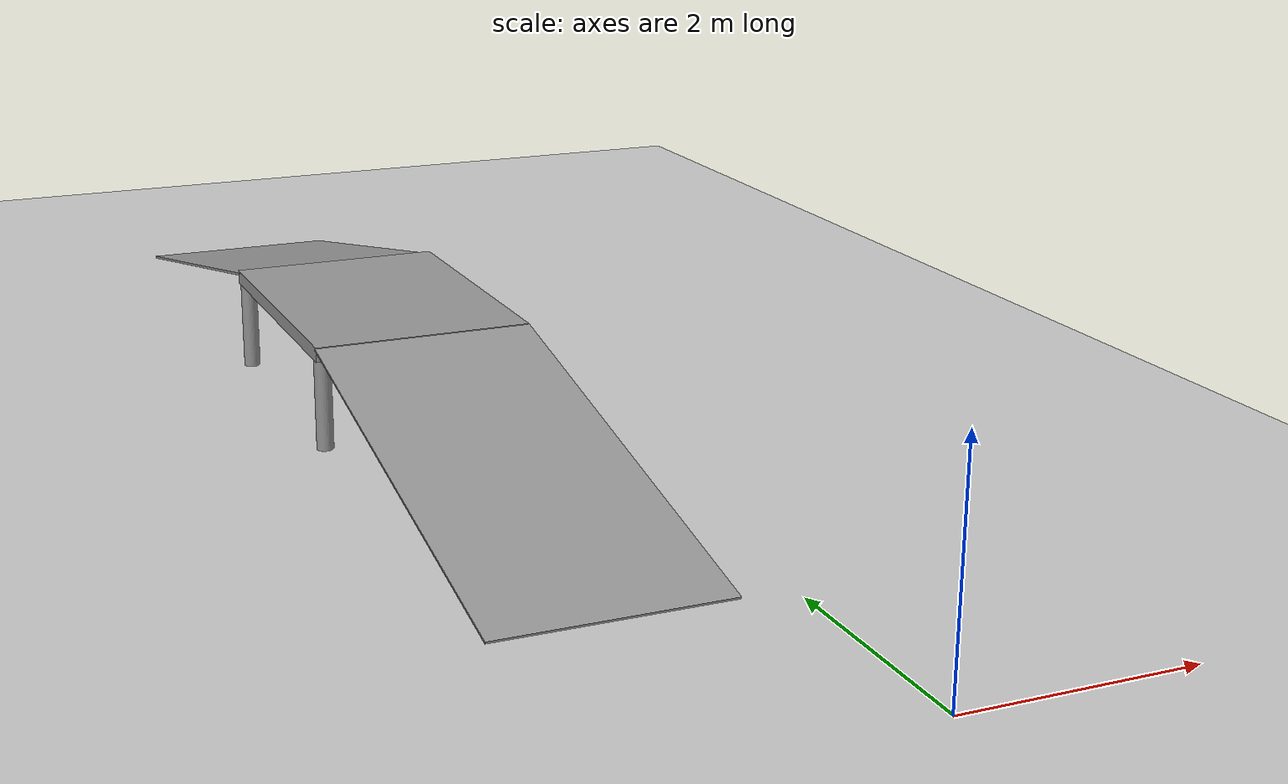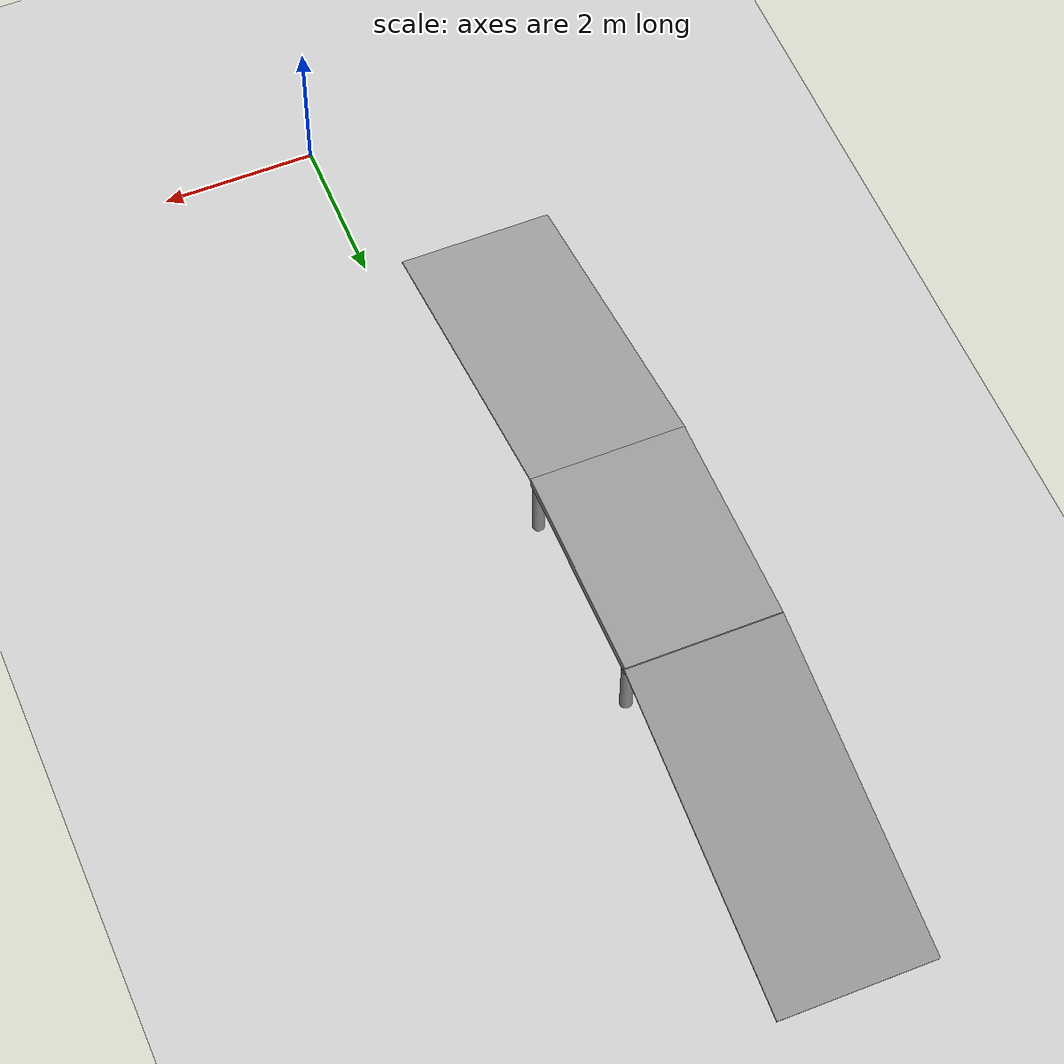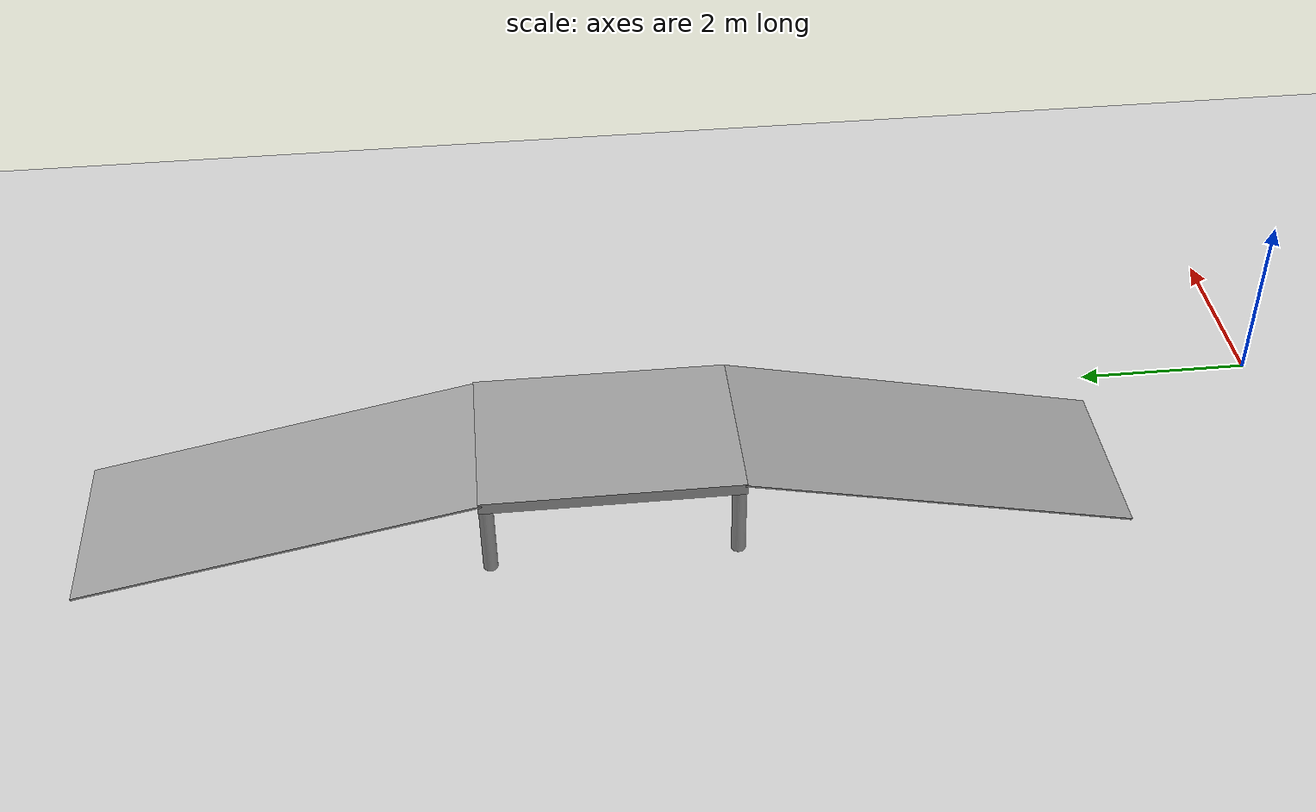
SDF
<sdf version="1.6">
 <world name="default">
  <model name="ground_plane">
   <static>1</static>
   <link name="link">
    <collision name="collision">
     <geometry><plane><normal>0 0 1</normal><size>100 100</size></plane></geometry>
     <surface><friction><ode><mu>100</mu><mu2>50</mu2></ode></friction></surface>
    </collision>
    <visual name="visual">
     <cast_shadows>0</cast_shadows>
     <geometry><plane><normal>0 0 1</normal><size>100 100</size></plane></geometry>
     <material>
      <script><uri>file://media/materials/scripts/gazebo.material</uri><name>Gazebo/Grey</name></script>
     </material>
    </visual>
   </link>
  </model>
  <model name="table_own">
   <link name="link_0">
    <inertial>
     <mass>3.33898</mass>
     <inertia><ixx>1.13984</ixx><ixy>0</ixy><ixz>0</ixz><iyy>5.38214</iyy><iyz>0</iyz><izz>6.52179</izz></inertia>
    </inertial>
    <pose>-4.42452 -0.001438 0.076896 0 -0.212596 0</pose>
    <visual name="visual">
     <geometry><box><size>4.39802 2.02389 0.018756</size></box></geometry>
     <material>
      <lighting>1</lighting>
      <script><uri>file://media/materials/scripts/gazebo.material</uri><name>Gazebo/Grey</name></script>
      <shader type="pixel"><normal_map>__default__</normal_map></shader>
      <emissive>0 0 0 1</emissive>
      <ambient>0.3 0.3 0.3 1</ambient>
      <diffuse>0.7 0.7 0.7 1</diffuse>
      <specular>0.01 0.01 0.01 1</specular>
     </material>
    </visual>
    <collision name="collision">
     <geometry><box><size>4.39802 2.02389 0.018756</size></box></geometry>
     <surface>
      <friction>
       <ode><mu>10</mu><mu2>10</mu2><fdir1>0 0 0</fdir1><slip1>0</slip1><slip2>0</slip2></ode>
       <torsional>
        <coefficient>1</coefficient>
        <patch_radius>0</patch_radius>
        <surface_radius>0</surface_radius>
        <use_patch_radius>1</use_patch_radius>
        <ode><slip>0</slip></ode>
       </torsional>
      </friction>
      <bounce><restitution_coefficient>0</restitution_coefficient><threshold>1e+06</threshold></bounce>
      <contact>
       <collide_without_contact>0</collide_without_contact>
       <collide_without_contact_bitmask>1</collide_without_contact_bitmask>
       <collide_bitmask>1</collide_bitmask>
       <ode>
        <soft_cfm>0</soft_cfm>
        <soft_erp>0.2</soft_erp>
        <kp>1e+13</kp>
        <kd>1</kd>
        <max_vel>0.01</max_vel>
        <min_depth>0</min_depth>
       </ode>
       <bullet>
        <split_impulse>1</split_impulse>
        <split_impulse_penetration_threshold>-0.01</split_impulse_penetration_threshold>
        <soft_cfm>0</soft_cfm>
        <soft_erp>0.2</soft_erp>
        <kp>1e+13</kp>
        <kd>1</kd>
       </bullet>
      </contact>
     </surface>
    </collision>
   </link>
   <link name="link_0_clone">
    <inertial>
     <mass>4.18581</mass>
     <inertia><ixx>1.42899</ixx><ixy>0</ixy><ixz>0</ixz><iyy>6.88228</iyy><iyz>0</iyz><izz>8.31089</izz></inertia>
    </inertial>
    <pose>2.66087 -0.001437 0.083695 0 0.200095 0</pose>
    <visual name="visual">
     <geometry><box><size>4.44182 2.02389 0.023281</size></box></geometry>
     <material>
      <lighting>1</lighting>
      <script><uri>file://media/materials/scripts/gazebo.material</uri><name>Gazebo/Grey</name></script>
      <shader type="pixel"><normal_map>__default__</normal_map></shader>
      <emissive>0 0 0 1</emissive>
     </material>
    </visual>
    <collision name="collision">
     <geometry><box><size>4.44182 2.02389 0.023281</size></box></geometry>
     <surface>
      <friction>
       <ode><mu>10</mu><mu2>10</mu2><fdir1>0 0 0</fdir1><slip1>0</slip1><slip2>0</slip2></ode>
       <torsional>
        <coefficient>1</coefficient>
        <patch_radius>0</patch_radius>
        <surface_radius>0</surface_radius>
        <use_patch_radius>1</use_patch_radius>
        <ode><slip>0</slip></ode>
       </torsional>
      </friction>
      <bounce><restitution_coefficient>0</restitution_coefficient><threshold>1e+06</threshold></bounce>
      <contact>
       <collide_without_contact>0</collide_without_contact>
       <collide_without_contact_bitmask>1</collide_without_contact_bitmask>
       <collide_bitmask>1</collide_bitmask>
       <ode>
        <soft_cfm>0</soft_cfm>
        <soft_erp>0.2</soft_erp>
        <kp>1e+13</kp>
        <kd>1</kd>
        <max_vel>0.01</max_vel>
        <min_depth>0</min_depth>
       </ode>
       <bullet>
        <split_impulse>1</split_impulse>
        <split_impulse_penetration_threshold>-0.01</split_impulse_penetration_threshold>
        <soft_cfm>0</soft_cfm>
        <soft_erp>0.2</soft_erp>
        <kp>1e+13</kp>
        <kd>1</kd>
       </bullet>
      </contact>
     </surface>
    </collision>
   </link>
   <link name="link_1">
    <inertial>
     <mass>1</mass>
     <inertia>
      <ixx>0.0602333</ixx>
      <ixy>0</ixy>
      <ixz>0</ixz>
      <iyy>0.0602333</iyy>
      <iyz>0</iyz>
      <izz>0.00303202</izz>
     </inertia>
    </inertial>
    <pose>-2.22387 -0.92943 -0 0 -0 0</pose>
    <visual name="visual">
     <geometry><cylinder><radius>0.0778722</radius><length>0.839409</length></cylinder></geometry>
     <material>
      <lighting>1</lighting>
      <script><uri>file://media/materials/scripts/gazebo.material</uri><name>Gazebo/Grey</name></script>
      <shader type="pixel"><normal_map>__default__</normal_map></shader>
      <emissive>0 0 0 1</emissive>
      <ambient>0.3 0.3 0.3 1</ambient>
      <diffuse>0.7 0.7 0.7 1</diffuse>
      <specular>0.01 0.01 0.01 1</specular>
     </material>
    </visual>
    <collision name="collision">
     <geometry><cylinder><radius>0.077872</radius><length>0.839409</length></cylinder></geometry>
     <surface>
      <friction>
       <ode><mu>1</mu><mu2>1</mu2><fdir1>0 0 0</fdir1><slip1>0</slip1><slip2>0</slip2></ode>
       <torsional>
        <coefficient>1</coefficient>
        <patch_radius>0</patch_radius>
        <surface_radius>0</surface_radius>
        <use_patch_radius>1</use_patch_radius>
        <ode><slip>0</slip></ode>
       </torsional>
      </friction>
      <bounce><restitution_coefficient>0</restitution_coefficient><threshold>1e+06</threshold></bounce>
      <contact>
       <collide_without_contact>0</collide_without_contact>
       <collide_without_contact_bitmask>1</collide_without_contact_bitmask>
       <collide_bitmask>1</collide_bitmask>
       <ode>
        <soft_cfm>0</soft_cfm>
        <soft_erp>0.2</soft_erp>
        <kp>1e+13</kp>
        <kd>1</kd>
        <max_vel>0.01</max_vel>
        <min_depth>0</min_depth>
       </ode>
       <bullet>
        <split_impulse>1</split_impulse>
        <split_impulse_penetration_threshold>-0.01</split_impulse_penetration_threshold>
        <soft_cfm>0</soft_cfm>
        <soft_erp>0.2</soft_erp>
        <kp>1e+13</kp>
        <kd>1</kd>
       </bullet>
      </contact>
     </surface>
    </collision>
   </link>
   <link name="link_1_clone">
    <inertial>
     <mass>1</mass>
     <inertia>
      <ixx>0.0602333</ixx>
      <ixy>0</ixy>
      <ixz>0</ixz>
      <iyy>0.0602333</iyy>
      <iyz>0</iyz>
      <izz>0.00303202</izz>
     </inertia>
    </inertial>
    <pose>0.447501 -0.92943 0.00079 0 -0 0</pose>
    <visual name="visual">
     <geometry><cylinder><radius>0.0778722</radius><length>0.839409</length></cylinder></geometry>
     <material>
      <lighting>1</lighting>
      <script><uri>file://media/materials/scripts/gazebo.material</uri><name>Gazebo/Grey</name></script>
      <shader type="pixel"><normal_map>__default__</normal_map></shader>
      <emissive>0 0 0 1</emissive>
      <ambient>0.3 0.3 0.3 1</ambient>
      <diffuse>0.7 0.7 0.7 1</diffuse>
      <specular>0.01 0.01 0.01 1</specular>
     </material>
    </visual>
    <collision name="collision">
     <geometry><cylinder><radius>0.077872</radius><length>0.839409</length></cylinder></geometry>
     <surface>
      <friction>
       <ode><mu>1</mu><mu2>1</mu2><fdir1>0 0 0</fdir1><slip1>0</slip1><slip2>0</slip2></ode>
       <torsional>
        <coefficient>1</coefficient>
        <patch_radius>0</patch_radius>
        <surface_radius>0</surface_radius>
        <use_patch_radius>1</use_patch_radius>
        <ode><slip>0</slip></ode>
       </torsional>
      </friction>
      <bounce><restitution_coefficient>0</restitution_coefficient><threshold>1e+06</threshold></bounce>
      <contact>
       <collide_without_contact>0</collide_without_contact>
       <collide_without_contact_bitmask>1</collide_without_contact_bitmask>
       <collide_bitmask>1</collide_bitmask>
       <ode>
        <soft_cfm>0</soft_cfm>
        <soft_erp>0.2</soft_erp>
        <kp>1e+13</kp>
        <kd>1</kd>
        <max_vel>0.01</max_vel>
        <min_depth>0</min_depth>
       </ode>
       <bullet>
        <split_impulse>1</split_impulse>
        <split_impulse_penetration_threshold>-0.01</split_impulse_penetration_threshold>
        <soft_cfm>0</soft_cfm>
        <soft_erp>0.2</soft_erp>
        <kp>1e+13</kp>
        <kd>1</kd>
       </bullet>
      </contact>
     </surface>
    </collision>
   </link>
   <link name="link_1_clone_0">
    <inertial>
     <mass>1</mass>
     <inertia>
      <ixx>0.0602333</ixx>
      <ixy>0</ixy>
      <ixz>0</ixz>
      <iyy>0.0602333</iyy>
      <iyz>0</iyz>
      <izz>0.00303202</izz>
     </inertia>
    </inertial>
    <pose>0.4475 0.926553 0.000844 0 -0 0</pose>
    <visual name="visual">
     <geometry><cylinder><radius>0.0778722</radius><length>0.839409</length></cylinder></geometry>
     <material>
      <lighting>1</lighting>
      <script><uri>file://media/materials/scripts/gazebo.material</uri><name>Gazebo/Grey</name></script>
      <shader type="pixel"><normal_map>__default__</normal_map></shader>
      <emissive>0 0 0 1</emissive>
      <ambient>0.3 0.3 0.3 1</ambient>
      <diffuse>0.7 0.7 0.7 1</diffuse>
      <specular>0.01 0.01 0.01 1</specular>
     </material>
    </visual>
    <collision name="collision">
     <geometry><cylinder><radius>0.077872</radius><length>0.839409</length></cylinder></geometry>
     <surface>
      <friction>
       <ode><mu>1</mu><mu2>1</mu2><fdir1>0 0 0</fdir1><slip1>0</slip1><slip2>0</slip2></ode>
       <torsional>
        <coefficient>1</coefficient>
        <patch_radius>0</patch_radius>
        <surface_radius>0</surface_radius>
        <use_patch_radius>1</use_patch_radius>
        <ode><slip>0</slip></ode>
       </torsional>
      </friction>
      <bounce><restitution_coefficient>0</restitution_coefficient><threshold>1e+06</threshold></bounce>
      <contact>
       <collide_without_contact>0</collide_without_contact>
       <collide_without_contact_bitmask>1</collide_without_contact_bitmask>
       <collide_bitmask>1</collide_bitmask>
       <ode>
        <soft_cfm>0</soft_cfm>
        <soft_erp>0.2</soft_erp>
        <kp>1e+13</kp>
        <kd>1</kd>
        <max_vel>0.01</max_vel>
        <min_depth>0</min_depth>
       </ode>
       <bullet>
        <split_impulse>1</split_impulse>
        <split_impulse_penetration_threshold>-0.01</split_impulse_penetration_threshold>
        <soft_cfm>0</soft_cfm>
        <soft_erp>0.2</soft_erp>
        <kp>1e+13</kp>
        <kd>1</kd>
       </bullet>
      </contact>
     </surface>
    </collision>
   </link>
   <link name="link_1_clone_1">
    <inertial>
     <mass>1</mass>
     <inertia>
      <ixx>0.0602333</ixx>
      <ixy>0</ixy>
      <ixz>0</ixz>
      <iyy>0.0602333</iyy>
      <iyz>0</iyz>
      <izz>0.00303202</izz>
     </inertia>
    </inertial>
    <pose>-2.22387 0.926554 5.4e-05 0 -0 0</pose>
    <visual name="visual">
     <geometry><cylinder><radius>0.0778722</radius><length>0.839409</length></cylinder></geometry>
     <material>
      <lighting>1</lighting>
      <script><uri>file://media/materials/scripts/gazebo.material</uri><name>Gazebo/Grey</name></script>
      <shader type="pixel"><normal_map>__default__</normal_map></shader>
      <emissive>0 0 0 1</emissive>
      <ambient>0.3 0.3 0.3 1</ambient>
      <diffuse>0.7 0.7 0.7 1</diffuse>
      <specular>0.01 0.01 0.01 1</specular>
     </material>
    </visual>
    <collision name="collision">
     <geometry><cylinder><radius>0.077872</radius><length>0.839409</length></cylinder></geometry>
     <surface>
      <friction>
       <ode><mu>1</mu><mu2>1</mu2><fdir1>0 0 0</fdir1><slip1>0</slip1><slip2>0</slip2></ode>
       <torsional>
        <coefficient>1</coefficient>
        <patch_radius>0</patch_radius>
        <surface_radius>0</surface_radius>
        <use_patch_radius>1</use_patch_radius>
        <ode><slip>0</slip></ode>
       </torsional>
      </friction>
      <bounce><restitution_coefficient>0</restitution_coefficient><threshold>1e+06</threshold></bounce>
      <contact>
       <collide_without_contact>0</collide_without_contact>
       <collide_without_contact_bitmask>1</collide_without_contact_bitmask>
       <collide_bitmask>1</collide_bitmask>
       <ode>
        <soft_cfm>0</soft_cfm>
        <soft_erp>0.2</soft_erp>
        <kp>1e+13</kp>
        <kd>1</kd>
        <max_vel>0.01</max_vel>
        <min_depth>0</min_depth>
       </ode>
       <bullet>
        <split_impulse>1</split_impulse>
        <split_impulse_penetration_threshold>-0.01</split_impulse_penetration_threshold>
        <soft_cfm>0</soft_cfm>
        <soft_erp>0.2</soft_erp>
        <kp>1e+13</kp>
        <kd>1</kd>
       </bullet>
      </contact>
     </surface>
    </collision>
   </link>
   <link name="link_2">
    <inertial>
     <mass>15.0823</mass>
     <inertia><ixx>5.10868</ixx><ixy>0</ixy><ixz>0</ixz><iyy>10.0677</iyy><iyz>0</iyz><izz>15.1322</izz></inertia>
    </inertial>
    <pose>-0.888179 -0.001438 0.486896 0 -0 0</pose>
    <visual name="visual">
     <geometry><box><size>2.82712 2.01173 0.132594</size></box></geometry>
     <material>
      <lighting>1</lighting>
      <script><uri>file://media/materials/scripts/gazebo.material</uri><name>Gazebo/Grey</name></script>
      <shader type="pixel"><normal_map>__default__</normal_map></shader>
      <emissive>0 0 0 1</emissive>
     </material>
    </visual>
    <collision name="collision">
     <geometry><box><size>2.82712 2.01173 0.132594</size></box></geometry>
     <surface>
      <friction>
       <ode><mu>10</mu><mu2>10</mu2><fdir1>0 0 0</fdir1><slip1>0</slip1><slip2>0</slip2></ode>
       <torsional>
        <coefficient>1</coefficient>
        <patch_radius>0</patch_radius>
        <surface_radius>0</surface_radius>
        <use_patch_radius>1</use_patch_radius>
        <ode><slip>0</slip></ode>
       </torsional>
      </friction>
      <bounce><restitution_coefficient>0</restitution_coefficient><threshold>1e+06</threshold></bounce>
      <contact>
       <collide_without_contact>0</collide_without_contact>
       <collide_without_contact_bitmask>1</collide_without_contact_bitmask>
       <collide_bitmask>1</collide_bitmask>
       <ode>
        <soft_cfm>0</soft_cfm>
        <soft_erp>0.2</soft_erp>
        <kp>1e+13</kp>
        <kd>1</kd>
        <max_vel>0.01</max_vel>
        <min_depth>0</min_depth>
       </ode>
       <bullet>
        <split_impulse>1</split_impulse>
        <split_impulse_penetration_threshold>-0.01</split_impulse_penetration_threshold>
        <soft_cfm>0</soft_cfm>
        <soft_erp>0.2</soft_erp>
        <kp>1e+13</kp>
        <kd>1</kd>
       </bullet>
      </contact>
     </surface>
    </collision>
   </link>
   <joint name="link_1_JOINT_1" type="fixed">
    <parent>link_1</parent>
    <child>link_2</child>
    <physics>
     <ode><limit><cfm>0</cfm><erp>0.2</erp></limit><suspension><cfm>0</cfm><erp>0.2</erp></suspension></ode>
    </physics>
   </joint>
   <joint name="link_2_JOINT_2" type="fixed">
    <parent>link_2</parent>
    <child>link_1_clone</child>
    <physics>
     <ode><limit><cfm>0</cfm><erp>0.2</erp></limit><suspension><cfm>0</cfm><erp>0.2</erp></suspension></ode>
    </physics>
   </joint>
   <joint name="link_2_JOINT_3" type="fixed">
    <parent>link_2</parent>
    <child>link_1_clone_1</child>
    <physics>
     <ode><limit><cfm>0</cfm><erp>0.2</erp></limit><suspension><cfm>0</cfm><erp>0.2</erp></suspension></ode>
    </physics>
   </joint>
   <joint name="link_2_JOINT_4" type="fixed">
    <parent>link_2</parent>
    <child>link_1_clone_0</child>
    <physics>
     <ode><limit><cfm>0</cfm><erp>0.2</erp></limit><suspension><cfm>0</cfm><erp>0.2</erp></suspension></ode>
    </physics>
   </joint>
   <joint name="link_2_JOINT_6" type="fixed">
    <parent>link_2</parent>
    <child>link_0</child>
    <physics>
     <ode><limit><cfm>0</cfm><erp>0.2</erp></limit><suspension><cfm>0</cfm><erp>0.2</erp></suspension></ode>
    </physics>
   </joint>
   <joint name="link_2_JOINT_7" type="fixed">
    <parent>link_2</parent>
    <child>link_0_clone</child>
    <physics>
     <ode><limit><cfm>0</cfm><erp>0.2</erp></limit><suspension><cfm>0</cfm><erp>0.2</erp></suspension></ode>
    </physics>
   </joint>
   <static>0</static>
   <pose>-1.48097 8.68967 0.418903 -5.5e-05 0.00033 1.57067</pose>
  </model>
 </world>
</sdf>
